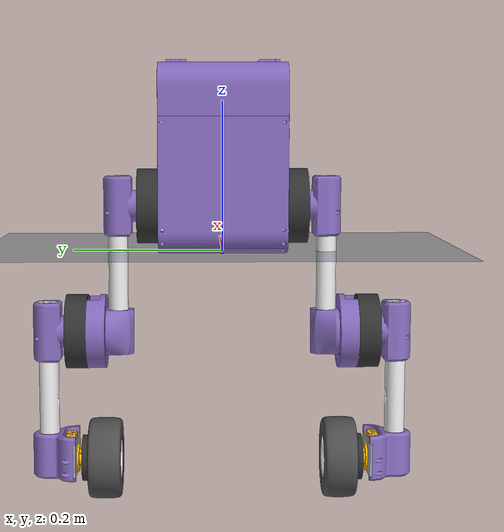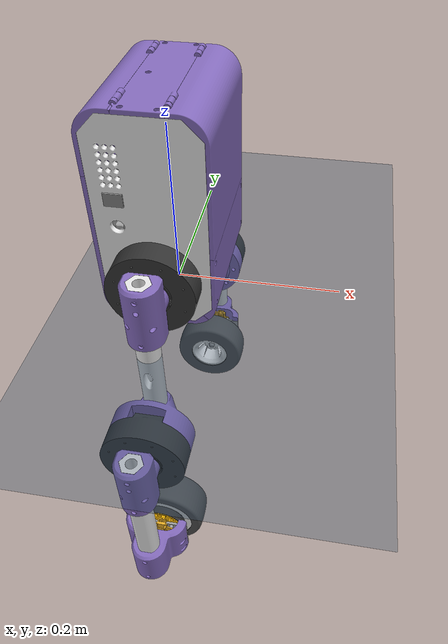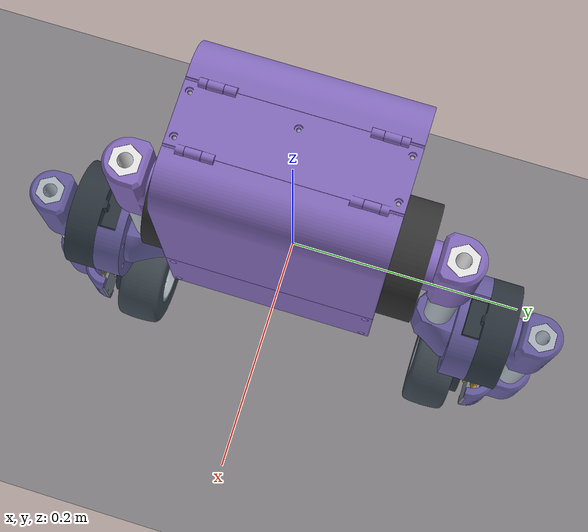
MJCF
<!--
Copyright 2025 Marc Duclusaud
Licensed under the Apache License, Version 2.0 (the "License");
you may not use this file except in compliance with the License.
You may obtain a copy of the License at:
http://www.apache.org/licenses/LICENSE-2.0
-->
<mujoco model="scene">
    <include file="robot.xml" />

    <visual>
        <headlight diffuse="0.6 0.6 0.6" ambient="0.3 0.3 0.3" specular="0 0 0" />
        <rgba haze="0.15 0.25 0.35 1" />
        <global azimuth="160" elevation="-20" />
    </visual>

    <asset>
        <texture type="skybox" builtin="gradient" rgb1="0.3 0.5 0.7" rgb2="0 0 0" width="512"
            height="3072" />
        <texture type="2d" name="groundplane" builtin="checker" mark="edge" rgb1="0.2 0.3 0.4"
            rgb2="0.1 0.2 0.3"
            markrgb="0.8 0.8 0.8" width="300" height="300" />
        <material name="groundplane" texture="groundplane" texuniform="true" texrepeat="5 5"
            reflectance="0.2" />
    </asset>

    <worldbody>
        <light pos="0 0 3.5" dir="0 0 -1" directional="true" />
        <geom name="floor" size="0 0 0.05" pos="0 0 0" type="plane" material="groundplane" />
    </worldbody>
</mujoco>

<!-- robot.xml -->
<mujoco model="upkie">
  <compiler angle="radian" meshdir="assets" autolimits="true"/>
  <default>
    <default class="upkie">
      <joint frictionloss="0.1" armature="0.005"/>
      <position dampratio="1"/>
      <default class="visual">
        <geom type="mesh" contype="0" conaffinity="0" density="0" group="2"/>
      </default>
      <default class="collision">
        <geom group="3" contype="1" conaffinity="1"/>
      </default>
    </default>
  </default>

  <!-- Additional no_slip.xml -->
  <option noslip_iterations="4"/>

  <worldbody>
    <!-- Link trunk -->
    <body name="trunk" pos="0 0 0" quat="1 0 0 0" childclass="upkie">
      <freejoint name="trunk_freejoint"/>
      <inertial pos="0.000135877 0.000596249 0.0877119" mass="2.6415" fullinertia="0.0217792 0.0127537 0.0147651 6.48606e-05 0.000263842 -3.98875e-05"/>
      <!-- Part back_cover -->
      <geom type="mesh" class="visual" pos="-0.0002 -0.085 0.1252" quat="0.707107 8.67097e-16 2.22045e-16 0.707107" mesh="back_cover" material="back_cover_material"/>
      <!-- Part right_side -->
      <geom type="mesh" class="visual" pos="8.57208e-17 -0.085 0.1252" quat="0.707107 8.19486e-16 4.44089e-16 0.707107" mesh="right_side" material="right_side_material"/>
      <!-- Part separating_panel -->
      <geom type="mesh" class="visual" pos="-1.00621e-16 -0.085 0.1248" quat="0.707107 1.61553e-15 6.66134e-16 0.707107" mesh="separating_panel" material="separating_panel_material"/>
      <!-- Part left_side -->
      <geom type="mesh" class="visual" pos="1.02374e-16 -0.085 0.1252" quat="0.707107 8.68551e-16 4.44089e-16 0.707107" mesh="left_side" material="left_side_material"/>
      <!-- Part top_cover -->
      <geom type="mesh" class="visual" pos="-1.15178e-16 -0.085 0.125" quat="0.707107 1.64996e-15 6.66134e-16 0.707107" mesh="top_cover" material="top_cover_material"/>
      <!-- Part power_dist -->
      <geom type="mesh" class="visual" pos="-0.0552 -0.03 0.125246" quat="0.5 0.5 0.5 -0.5" mesh="power_dist" material="power_dist_material"/>
      <!-- Part bottom_cover -->
      <geom name="trunk_collision1" class="collision" pos="5.22993e-17 -2.77556e-17 0.125" quat="0.707107 7.72671e-17 -9.71445e-17 0.707107" type="box" size="0.085 0.0652 0.125"/>
      <geom type="mesh" class="visual" pos="-2.54306e-17 -0.085 0.125" quat="0.707107 7.72671e-17 -9.71445e-17 0.707107" mesh="bottom_cover" material="bottom_cover_material"/>
      <!-- Part switch -->
      <geom type="mesh" class="visual" pos="-0.035 -0.085 0.1572" quat="0.5 0.5 -0.5 0.5" mesh="switch" material="switch_material"/>
      <!-- Part front_opening -->
      <geom type="mesh" class="visual" pos="6.92065e-16 -0.085 0.125" quat="0.707107 1.32681e-15 1.08247e-15 0.707107" mesh="front_opening" material="front_opening_material"/>
      <!-- Part qdd100_stator -->
      <geom name="trunk_collision2" class="collision" pos="1.68912e-16 0.09935 0.0602" quat="0.5 0.5 0.5 -0.5" type="cylinder" size="0.05 0.01435"/>
      <geom type="mesh" class="visual" pos="2.79473e-16 0.085 0.1252" quat="0.707107 -2.93569e-16 9.99201e-16 -0.707107" mesh="qdd100_stator" material="qdd100_stator_material"/>
      <!-- Part back_opening -->
      <geom type="mesh" class="visual" pos="-1.02878e-15 -0.085 0.125" quat="0.707107 1.32681e-15 1.05471e-15 0.707107" mesh="back_opening" material="back_opening_material"/>
      <!-- Part qdd100_stator_2 -->
      <geom name="trunk_collision3" class="collision" pos="-5.90135e-18 -0.09935 0.0602" quat="0.5 -0.5 0.5 0.5" type="cylinder" size="0.05 0.01435"/>
      <geom type="mesh" class="visual" pos="1.6458e-16 -0.085 0.1252" quat="0.707107 1.15914e-15 7.77156e-16 0.707107" mesh="qdd100_stator" material="qdd100_stator_material"/>
      <!-- Part battery_tattu -->
      <geom type="mesh" class="visual" pos="0.011 -0.0225 0.0748" quat="8.88178e-16 -1.4988e-15 -0.707107 -0.707107" mesh="battery_tattu" material="battery_tattu_material"/>
      <!-- Part raspberry -->
      <geom type="mesh" class="visual" pos="-0.0417 0.0400012 0.132746" quat="0.707107 -4.29469e-15 5.32907e-15 -0.707107" mesh="raspberry" material="raspberry_material"/>
      <!-- Part front_cover -->
      <geom type="mesh" class="visual" pos="0.0002 -0.085 0.1252" quat="0.707107 1.30451e-15 2.22045e-16 0.707107" mesh="front_cover" material="front_cover_material"/>
      <!-- Frame body -->
      <site group="0" name="body" pos="0 0 0" quat="1 0 0 0"/>
      <!-- Frame imu -->
      <site group="0" name="imu" pos="-0.04095 0.0400012 0.130246" quat="0.5 -0.5 0.5 -0.5"/>
      <!-- Link femur -->
      <body name="femur" pos="1.88318e-16 0.1137 0.0602" quat="5.55112e-16 -5.01408e-16 -0.707107 -0.707107">
        <!-- Joint from trunk to femur -->
        <joint name="left_hip" type="hinge" range="-3.05433 3.05433"/>
        <inertial pos="-1.9262e-08 -0.142827 0.0596176" mass="0.7645" fullinertia="0.00377771 0.000940238 0.00358651 6.45614e-10 -5.25505e-10 0.000901135"/>
        <!-- Part qdd100_rotor -->
        <geom type="mesh" class="visual" pos="-2.46519e-32 -6.93889e-18 -0.0287" quat="1 0 4.16334e-17 -6.67869e-17" mesh="qdd100_rotor" material="qdd100_rotor_material"/>
        <!-- Part qdd100_support -->
        <geom name="left_femur_collision1" class="collision" pos="-1.71761e-14 -0.17015 0.0557487" quat="4.4964e-15 1.67246e-16 1.44329e-15 -1" type="cylinder" size="0.05 0.0125"/>
        <geom name="left_femur_collision2" class="collision" pos="-1.71706e-14 -0.17015 0.0252487" quat="0.5 -0.5 0.5 0.5" type="cylinder" size="0.02 0.03"/>
        <geom type="mesh" class="visual" pos="-1.71783e-14 -0.17015 0.0682487" quat="4.4964e-15 1.67246e-16 1.44329e-15 -1" mesh="qdd100_support" material="qdd100_support_material"/>
        <!-- Part femur -->
        <geom type="mesh" class="visual" pos="-1.99482e-14 -0.2 0.0261244" quat="0.5 -0.5 -0.5 -0.5" mesh="femur" material="femur_material"/>
        <!-- Part link_end -->
        <geom name="left_femur_collision3" class="collision" pos="-2.52545e-32 -6.93889e-18 0.0247" quat="0.707107 0.707107 0 4.9903e-33" type="cylinder" size="0.021 0.04"/>
        <geom type="mesh" class="visual" pos="-2.46519e-32 -6.93889e-18 -0.0287" quat="1 0 4.16334e-17 -6.67869e-17" mesh="link_end" material="link_end_material"/>
        <!-- Part qdd100_stator_3 -->
        <geom name="left_femur_collision4" class="collision" pos="-1.71809e-14 -0.17015 0.0825987" quat="4.4964e-15 1.67246e-16 1.44329e-15 -1" type="cylinder" size="0.05 0.01435"/>
        <geom type="mesh" class="visual" pos="-1.71783e-14 -0.17015 0.0682487" quat="4.4964e-15 1.67246e-16 1.44329e-15 -1" mesh="qdd100_stator__2" material="qdd100_stator__2_material"/>
        <!-- Link tibia -->
        <body name="tibia" pos="-1.71835e-14 -0.17015 0.0969487" quat="1.11022e-16 -4.53804e-15 1 1.42334e-15">
          <!-- Joint from femur to tibia -->
          <joint name="left_knee" type="hinge" range="-2.705260340591202 2.7052603405912197"/>
          <inertial pos="-5.94135e-06 -0.117367 -0.00307405" mass="0.3865" fullinertia="0.00259272 0.000261473 0.00249172 -1.62499e-07 1.48913e-08 0.000309417"/>
          <!-- Part qdd100_rotor_2 -->
          <geom type="mesh" class="visual" pos="2.08167e-17 -7.77156e-16 0.0287" quat="2.06432e-16 4.70457e-15 -1 3.46945e-17" mesh="qdd100_rotor" material="qdd100_rotor_material"/>
          <!-- Part moteus_controller -->
          <geom type="mesh" class="visual" pos="3.74349e-15 -0.1845 0.0046" quat="0.707107 -0.707107 -2.44249e-14 2.77858e-14" mesh="moteus_controller" material="moteus_controller_material"/>
          <!-- Part mj5208_stator -->
          <geom type="mesh" class="visual" pos="2.68656e-15 -0.1765 0.012" quat="1 -1.48176e-17 5.55112e-17 4.97519e-15" mesh="mj5208_stator" material="mj5208_stator_material"/>
          <!-- Part mj5208_support -->
          <geom name="left_tibia_collision1" class="collision" pos="2.35094e-15 -0.17025 -0.02616" quat="0.707107 -0.707107 -2.44249e-14 2.77858e-14" type="cylinder" size="0.022 0.03025"/>
          <geom name="left_tibia_collision2" class="collision" pos="0.019 -0.17025 0.00774" quat="0.707107 -0.707107 -2.44249e-14 2.77858e-14" type="cylinder" size="0.021 0.03025"/>
          <geom name="left_tibia_collision3" class="collision" pos="-0.019 -0.17025 0.00774" quat="0.707107 -0.707107 -2.44249e-14 2.77858e-14" type="cylinder" size="0.021 0.03025"/>
          <geom type="mesh" class="visual" pos="3.10225e-15 -0.1765 0.03424" quat="0.707107 -0.707107 -2.44249e-14 2.77858e-14" mesh="mj5208_support" material="mj5208_support_material"/>
          <!-- Part tibia -->
          <geom type="mesh" class="visual" pos="3.35448e-15 -0.2 -0.0261244" quat="0.5 -0.5 -0.5 -0.5" mesh="tibia" material="tibia_material"/>
          <!-- Part controller_bracket -->
          <geom type="mesh" class="visual" pos="3.10225e-15 -0.1765 0.03424" quat="0.707107 -0.707107 -2.44249e-14 2.77858e-14" mesh="controller_bracket" material="controller_bracket_material"/>
          <!-- Part link_end_2 -->
          <geom name="left_tibia_collision4" class="collision" pos="-9.63002e-18 -7.89025e-16 -0.0247" quat="3.10862e-15 -3.47368e-15 0.707107 -0.707107" type="cylinder" size="0.021 0.04"/>
          <geom type="mesh" class="visual" pos="2.08167e-17 -7.77156e-16 0.0287" quat="2.06432e-16 4.70457e-15 -1 3.46945e-17" mesh="link_end" material="link_end_material"/>
          <!-- Frame left_foot -->
          <site group="0" name="left_foot" pos="2.68542e-15 -0.1765 0.05095" quat="0.707107 -0.707107 -2.22045e-15 4.44208e-15"/>
          <!-- Link wheel -->
          <body name="wheel" pos="2.69207e-15 -0.1765 0.0195" quat="1.4647e-16 0.997711 0.0676268 1.00696e-16">
            <!-- Joint from tibia to wheel -->
            <joint name="left_wheel"/>
            <inertial pos="-7.85066e-06 4.53426e-06 -0.0252368" mass="0.2585" fullinertia="0.000202065 0.000202069 0.000313606 -7.7265e-09 1.97562e-08 -1.14162e-08"/>
            <!-- Part wheel_hub -->
            <geom type="mesh" class="visual" pos="2.01228e-16 -6.10623e-16 -0.0104" quat="0.707107 0.707107 0 6.87727e-17" mesh="wheel_hub" material="wheel_hub_material"/>
            <!-- Part mj5208_rotor -->
            <geom type="mesh" class="visual" pos="6.93889e-18 0 0.0075" quat="0 1 0 0" mesh="mj5208_rotor" material="mj5208_rotor_material"/>
            <!-- Part tire -->
            <geom name="left_foot_collision" class="collision" pos="4.85723e-16 -3.53884e-16 -0.0312" quat="3.06162e-17 -1 -5.39294e-17 1.45037e-25" type="cylinder" size="0.055 0.022"/>
            <geom type="mesh" class="visual" pos="4.51028e-16 -3.33067e-16 -0.0312" quat="0.707107 0.707107 1.11022e-16 3.81339e-17" mesh="tire" material="tire_material"/>
          </body>
        </body>
      </body>
      <!-- Link femur_2 -->
      <body name="femur_2" pos="-1.08058e-17 -0.1137 0.0602" quat="0.707107 0.707107 1.22125e-15 -7.19866e-16">
        <!-- Joint from trunk to femur_2 -->
        <joint name="right_hip" type="hinge" range="-3.05433 3.05433"/>
        <inertial pos="-1.9262e-08 -0.142827 0.0596176" mass="0.7645" fullinertia="0.00377771 0.000940238 0.00358651 6.45614e-10 -5.25505e-10 0.000901135"/>
        <!-- Part qdd100_rotor_3 -->
        <geom type="mesh" class="visual" pos="0 6.93889e-18 -0.0287" quat="1 0 1.11022e-16 1.11022e-16" mesh="qdd100_rotor" material="qdd100_rotor_material"/>
        <!-- Part qdd100_support_2 -->
        <geom name="right_femur_collision1" class="collision" pos="-3.5027e-15 -0.17015 0.0557487" quat="4.91104e-17 -9.31589e-17 6.11189e-17 -1" type="cylinder" size="0.05 0.0125"/>
        <geom name="right_femur_collision2" class="collision" pos="-3.5027e-15 -0.17015 0.0252487" quat="0.5 -0.5 0.5 0.5" type="cylinder" size="0.02 0.03"/>
        <geom type="mesh" class="visual" pos="-3.5027e-15 -0.17015 0.0682487" quat="4.91104e-17 -9.31589e-17 6.11189e-17 -1" mesh="qdd100_support" material="qdd100_support_material"/>
        <!-- Part femur_2 -->
        <geom type="mesh" class="visual" pos="-4.58159e-15 -0.2 0.0261244" quat="0.5 -0.5 -0.5 -0.5" mesh="femur" material="femur_material"/>
        <!-- Part link_end_3 -->
        <geom name="right_femur_collision3" class="collision" pos="6.65206e-34 6.93889e-18 0.0247" quat="0.707107 0.707107 0 -2.23212e-32" type="cylinder" size="0.021 0.04"/>
        <geom type="mesh" class="visual" pos="0 6.93889e-18 -0.0287" quat="1 0 1.11022e-16 1.11022e-16" mesh="link_end" material="link_end_material"/>
        <!-- Part qdd100_stator_4 -->
        <geom name="right_femur_collision4" class="collision" pos="-3.5027e-15 -0.17015 0.0825987" quat="4.91104e-17 -9.31589e-17 6.11189e-17 -1" type="cylinder" size="0.05 0.01435"/>
        <geom type="mesh" class="visual" pos="-3.5027e-15 -0.17015 0.0682487" quat="4.91104e-17 -9.31589e-17 6.11189e-17 -1" mesh="qdd100_stator__2" material="qdd100_stator__2_material"/>
        <!-- Link tibia_2 -->
        <body name="tibia_2" pos="-3.5027e-15 -0.17015 0.0969487" quat="0 -1.89858e-17 -1 -5.35936e-17">
          <!-- Joint from femur_2 to tibia_2 -->
          <joint name="right_knee" type="hinge" range="-2.705260340591211 2.705260340591211"/>
          <inertial pos="-5.94135e-06 -0.117367 -0.00307405" mass="0.3865" fullinertia="0.00259272 0.000261473 0.00249172 -1.62499e-07 1.48913e-08 0.000309417"/>
          <!-- Part qdd100_rotor_4 -->
          <geom type="mesh" class="visual" pos="3.46945e-18 2.77556e-17 0.0287" quat="2.22045e-16 1.26281e-16 -1 -3.05311e-16" mesh="qdd100_rotor" material="qdd100_rotor_material"/>
          <!-- Part moteus_controller_2 -->
          <geom type="mesh" class="visual" pos="1.0995e-14 -0.1845 0.0046" quat="0.707107 -0.707107 -2.26485e-14 2.30815e-14" mesh="moteus_controller" material="moteus_controller_material"/>
          <!-- Part mj5208_stator_2 -->
          <geom type="mesh" class="visual" pos="1.15097e-14 -0.1765 0.012" quat="1 3.54647e-16 4.44089e-16 6.45595e-14" mesh="mj5208_stator" material="mj5208_stator_material"/>
          <!-- Part mj5208_support_2 -->
          <geom name="right_tibia_collision1" class="collision" pos="1.10011e-14 -0.17025 -0.02616" quat="0.707107 -0.707107 -2.26485e-14 2.30815e-14" type="cylinder" size="0.022 0.03025"/>
          <geom name="right_tibia_collision2" class="collision" pos="0.019 -0.17025 0.00774" quat="0.707107 -0.707107 -2.26485e-14 2.30815e-14" type="cylinder" size="0.021 0.03025"/>
          <geom name="right_tibia_collision3" class="collision" pos="-0.019 -0.17025 0.00774" quat="0.707107 -0.707107 -2.26485e-14 2.30815e-14" type="cylinder" size="0.021 0.03025"/>
          <geom type="mesh" class="visual" pos="1.14357e-14 -0.1765 0.03424" quat="0.707107 -0.707107 -2.26485e-14 2.30815e-14" mesh="mj5208_support" material="mj5208_support_material"/>
          <!-- Part tibia_2 -->
          <geom type="mesh" class="visual" pos="1.24225e-14 -0.2 -0.0261244" quat="0.5 -0.5 -0.5 -0.5" mesh="tibia" material="tibia_material"/>
          <!-- Part controller_bracket_2 -->
          <geom type="mesh" class="visual" pos="1.14357e-14 -0.1765 0.03424" quat="0.707107 -0.707107 -2.26485e-14 2.30815e-14" mesh="controller_bracket" material="controller_bracket_material"/>
          <!-- Part link_end_4 -->
          <geom name="right_tibia_collision4" class="collision" pos="-1.34196e-17 2.17975e-17 -0.0247" quat="1.11022e-16 -1.87573e-16 0.707107 -0.707107" type="cylinder" size="0.021 0.04"/>
          <geom type="mesh" class="visual" pos="3.46945e-18 2.77556e-17 0.0287" quat="2.22045e-16 1.26281e-16 -1 -3.05311e-16" mesh="link_end" material="link_end_material"/>
          <!-- Frame right_foot -->
          <site group="0" name="right_foot" pos="1.15189e-14 -0.1765 0.05095" quat="4.57273e-14 4.73882e-14 -0.707107 -0.707107"/>
          <!-- Link wheel_2 -->
          <body name="wheel_2" pos="1.15121e-14 -0.1765 0.0195" quat="1.52494e-16 -0.707107 0.707107 5.06061e-16">
            <!-- Joint from tibia_2 to wheel_2 -->
            <joint name="right_wheel"/>
            <inertial pos="-7.85066e-06 4.53426e-06 -0.0252368" mass="0.2585" fullinertia="0.000202065 0.000202069 0.000313606 -7.7265e-09 1.97562e-08 -1.14162e-08"/>
            <!-- Part wheel_hub_2 -->
            <geom type="mesh" class="visual" pos="-5.55112e-17 1.03827e-16 -0.0104" quat="0.707107 0.707107 0 -4.95236e-32" mesh="wheel_hub" material="wheel_hub_material"/>
            <!-- Part mj5208_rotor_2 -->
            <geom type="mesh" class="visual" pos="0 0 0.0075" quat="0 1 0 0" mesh="mj5208_rotor" material="mj5208_rotor_material"/>
            <!-- Part tire_2 -->
            <geom name="right_foot_collision" class="collision" pos="1.66533e-16 7.22077e-17 -0.0312" quat="0 1 0 0" type="cylinder" size="0.055 0.022"/>
            <geom type="mesh" class="visual" pos="1.66533e-16 7.22077e-17 -0.0312" quat="0.707107 0.707107 -0 -1.16514e-30" mesh="tire" material="tire_material"/>
          </body>
        </body>
      </body>
    </body>
  </worldbody>

  <asset>
    <mesh file="femur.stl"/>
    <mesh file="bottom_cover.stl"/>
    <mesh file="power_dist.stl"/>
    <mesh file="raspberry.stl"/>
    <mesh file="tire.stl"/>
    <mesh file="qdd100_stator__2.stl"/>
    <mesh file="mj5208_rotor.stl"/>
    <mesh file="back_opening.stl"/>
    <mesh file="switch.stl"/>
    <mesh file="top_cover.stl"/>
    <mesh file="separating_panel.stl"/>
    <mesh file="front_opening.stl"/>
    <mesh file="controller_bracket.stl"/>
    <mesh file="qdd100_support.stl"/>
    <mesh file="right_side.stl"/>
    <mesh file="qdd100_rotor.stl"/>
    <mesh file="mj5208_support.stl"/>
    <mesh file="front_cover.stl"/>
    <mesh file="wheel_hub.stl"/>
    <mesh file="back_cover.stl"/>
    <mesh file="moteus_controller.stl"/>
    <mesh file="left_side.stl"/>
    <mesh file="battery_tattu.stl"/>
    <mesh file="tibia.stl"/>
    <mesh file="link_end.stl"/>
    <mesh file="mj5208_stator.stl"/>
    <mesh file="qdd100_stator.stl"/>
    <material name="back_cover_material" rgba="0.513725 0.415686 0.733333 1"/>
    <material name="right_side_material" rgba="0.901961 0.901961 0.901961 1"/>
    <material name="separating_panel_material" rgba="0.768627 0.886275 0.952941 1"/>
    <material name="left_side_material" rgba="0.901961 0.901961 0.901961 1"/>
    <material name="top_cover_material" rgba="0.513725 0.415686 0.733333 1"/>
    <material name="power_dist_material" rgba="0.627451 0.627451 0.627451 1"/>
    <material name="bottom_cover_material" rgba="0.513725 0.415686 0.733333 1"/>
    <material name="switch_material" rgba="0.501961 0.501961 0.501961 1"/>
    <material name="front_opening_material" rgba="0.513725 0.415686 0.733333 1"/>
    <material name="qdd100_stator_material" rgba="0.196078 0.196078 0.196078 1"/>
    <material name="back_opening_material" rgba="0.513725 0.415686 0.733333 1"/>
    <material name="battery_tattu_material" rgba="0.701961 0.701961 0.701961 1"/>
    <material name="raspberry_material" rgba="0.627451 0.627451 0.627451 1"/>
    <material name="front_cover_material" rgba="0.513725 0.415686 0.733333 1"/>
    <material name="qdd100_rotor_material" rgba="0.196078 0.196078 0.196078 1"/>
    <material name="qdd100_support_material" rgba="0.513725 0.415686 0.733333 1"/>
    <material name="femur_material" rgba="0.901961 0.901961 0.901961 1"/>
    <material name="link_end_material" rgba="0.513725 0.415686 0.733333 1"/>
    <material name="qdd100_stator__2_material" rgba="0.196078 0.196078 0.196078 1"/>
    <material name="moteus_controller_material" rgba="0.909804 0.678431 0.137255 1"/>
    <material name="mj5208_stator_material" rgba="0.980392 0.713725 0.00392157 1"/>
    <material name="mj5208_support_material" rgba="0.513725 0.415686 0.733333 1"/>
    <material name="tibia_material" rgba="0.901961 0.901961 0.901961 1"/>
    <material name="controller_bracket_material" rgba="0.627451 0.627451 0.627451 1"/>
    <material name="wheel_hub_material" rgba="0.901961 0.901961 0.901961 1"/>
    <material name="mj5208_rotor_material" rgba="0.196078 0.196078 0.196078 1"/>
    <material name="tire_material" rgba="0.301961 0.301961 0.301961 1"/>
  </asset>

  <actuator>
    <position name="left_hip" joint="left_hip" kp="8" kv="0.1" forcerange="-16.0 16.0"/>
    <position name="left_knee" joint="left_knee" kp="8" kv="0.1" forcerange="-16.0 16.0"/>
    <velocity name="left_wheel" joint="left_wheel" kv="0.05" forcerange="-1.7 1.7"/>
    <position name="right_hip" joint="right_hip" kp="8" kv="0.1" forcerange="-16.0 16.0"/>
    <position name="right_knee" joint="right_knee" kp="8" kv="0.1" forcerange="-16.0 16.0"/>
    <velocity name="right_wheel" joint="right_wheel" kv="0.05" forcerange="-1.7 1.7"/>
  </actuator>

  <sensor>
    <framequat name="imu_quad" objtype="site" objname="imu" />
    <gyro name="imu_ang_vel" site="imu" />
    <velocimeter name="imu_lin_vel" site="imu" />
  </sensor>

  <equality/>
</mujoco>
